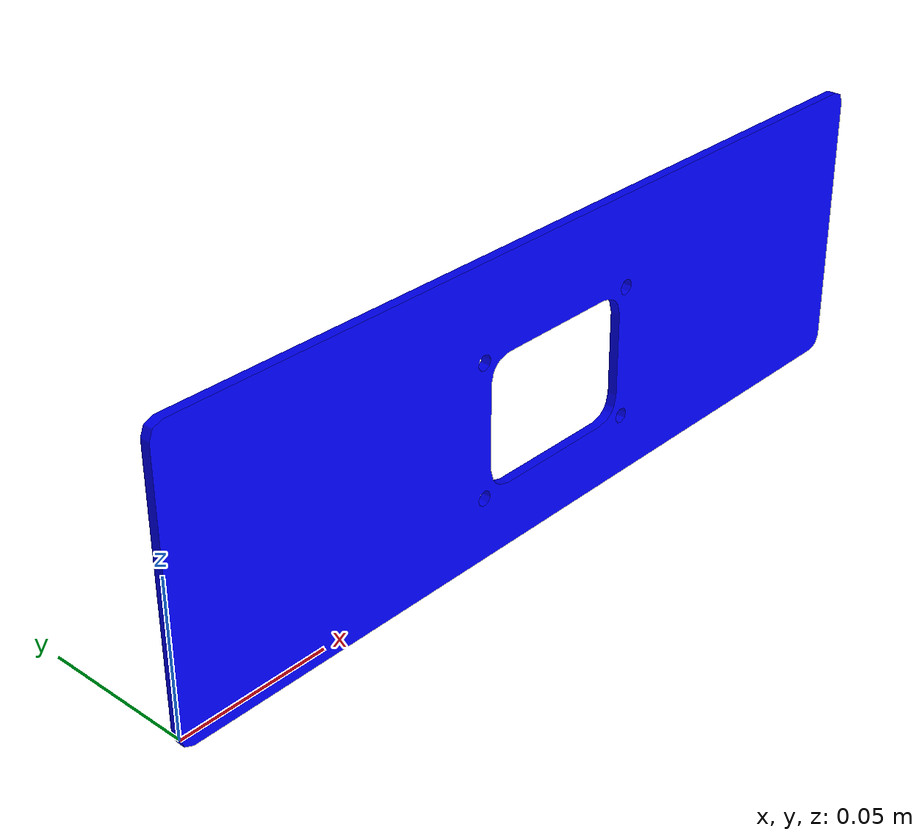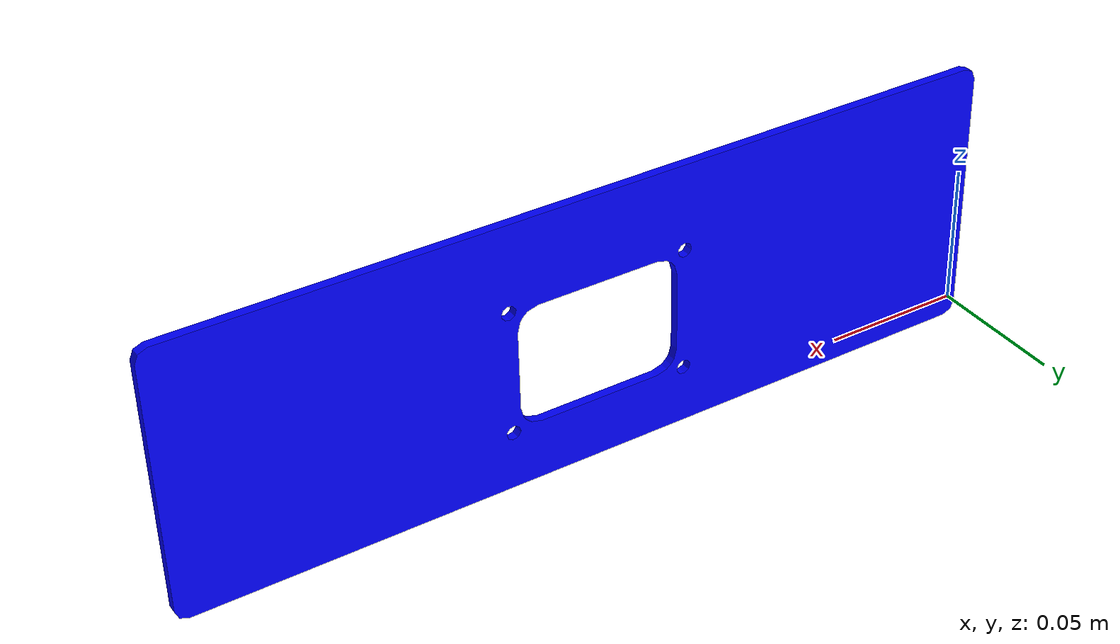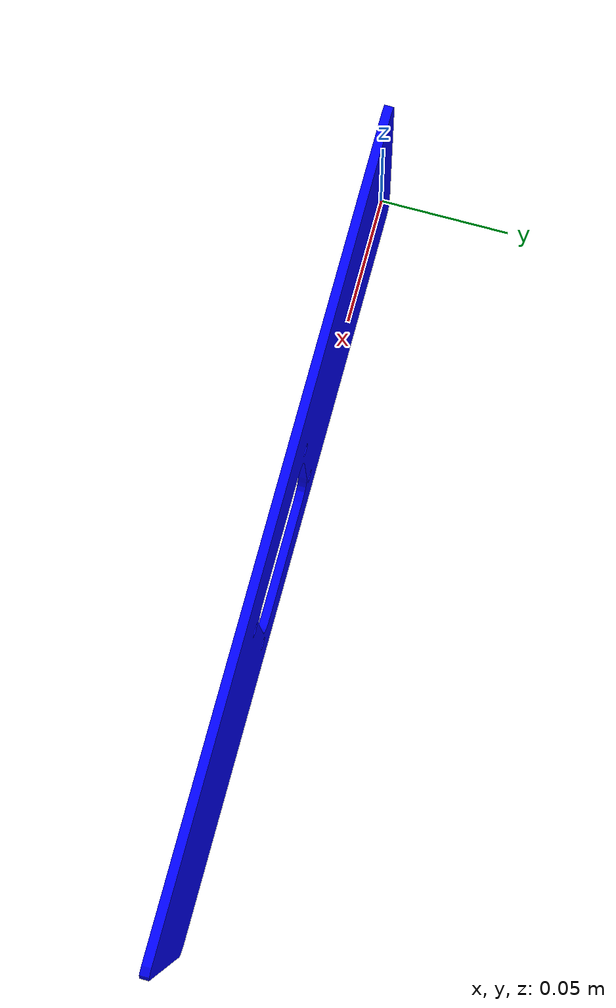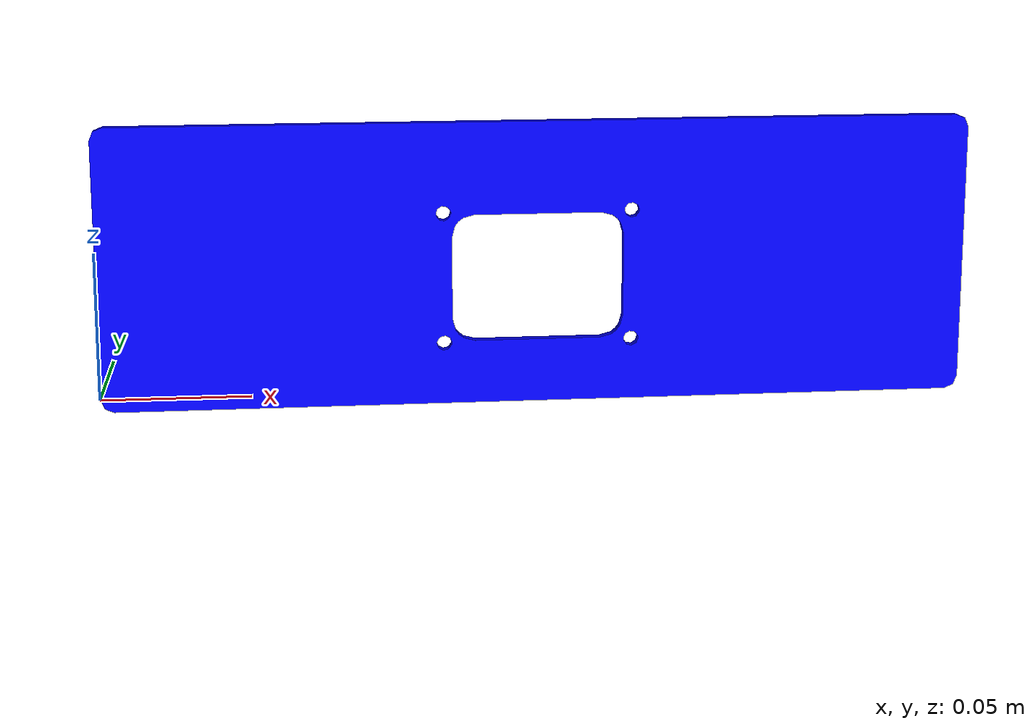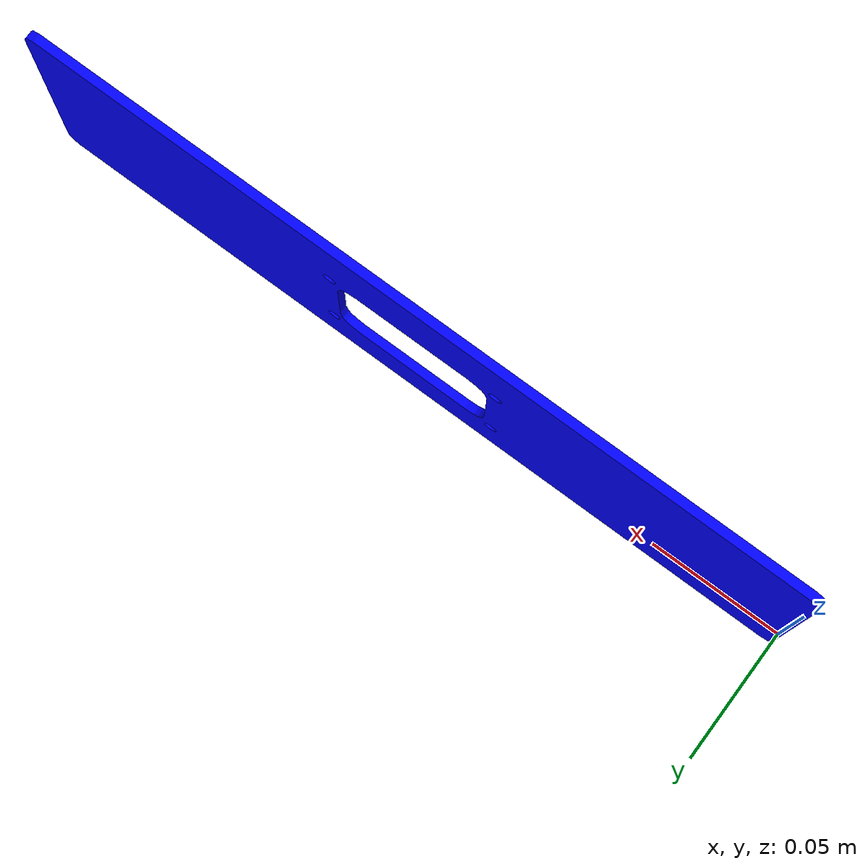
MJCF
<mujoco model="drawer_2_face">
  <default>
    <default class="visual">
      <geom group="2" type="mesh" contype="0" conaffinity="0"/>
    </default>
    <default class="collision">
      <geom group="3" type="mesh"/>
    </default>
  </default>
  <asset>
    <material name="mtl_drawer_2_face" specular="0.20000000000000004" shininess="1.0" rgba="0.00000000 0.00000000 1.00000000 1.0"/>
    <mesh file="drawer_2_face.obj"/>
  </asset>
  <worldbody>
    <body name="drawer_2_face">
      <geom material="mtl_drawer_2_face" mesh="drawer_2_face" class="visual"/>
      <geom mesh="drawer_2_face" class="collision"/>
    </body>
  </worldbody>
</mujoco>
